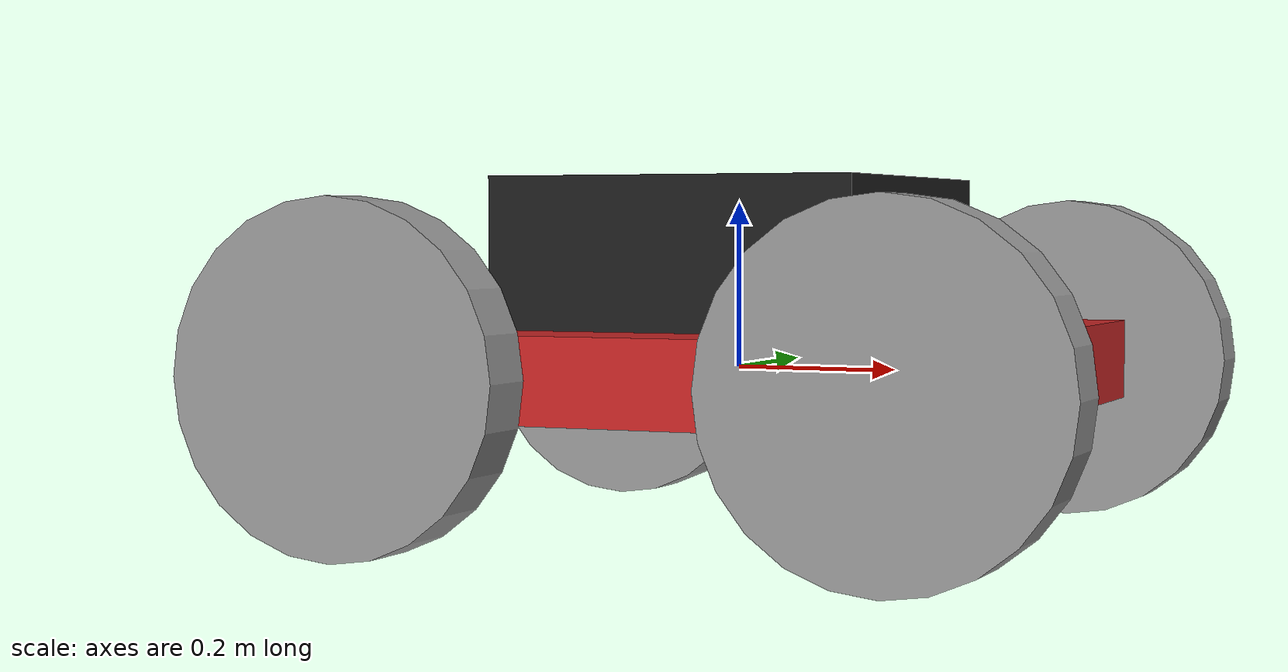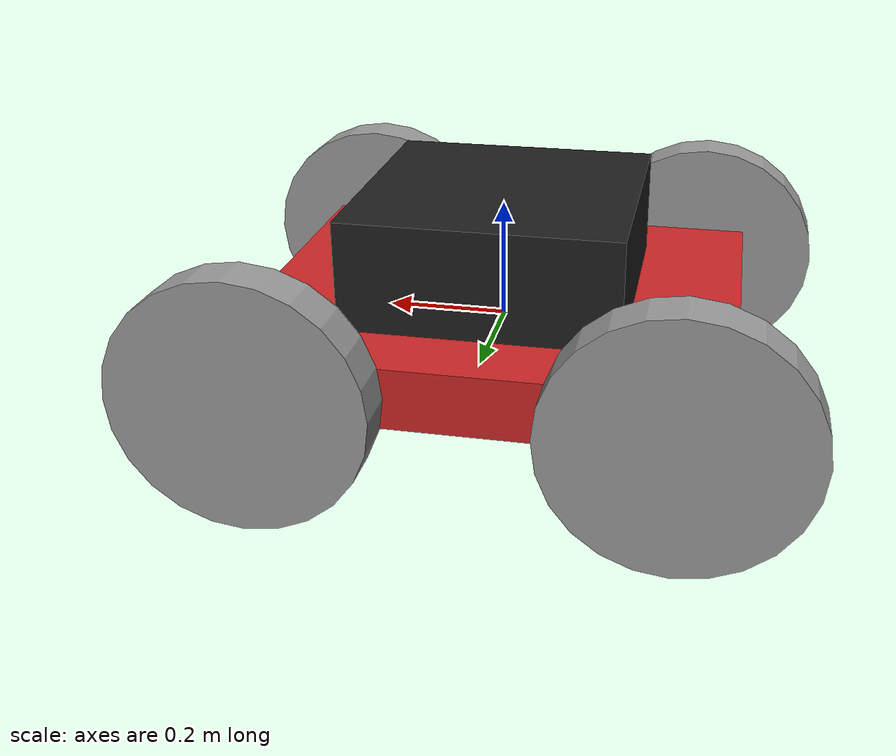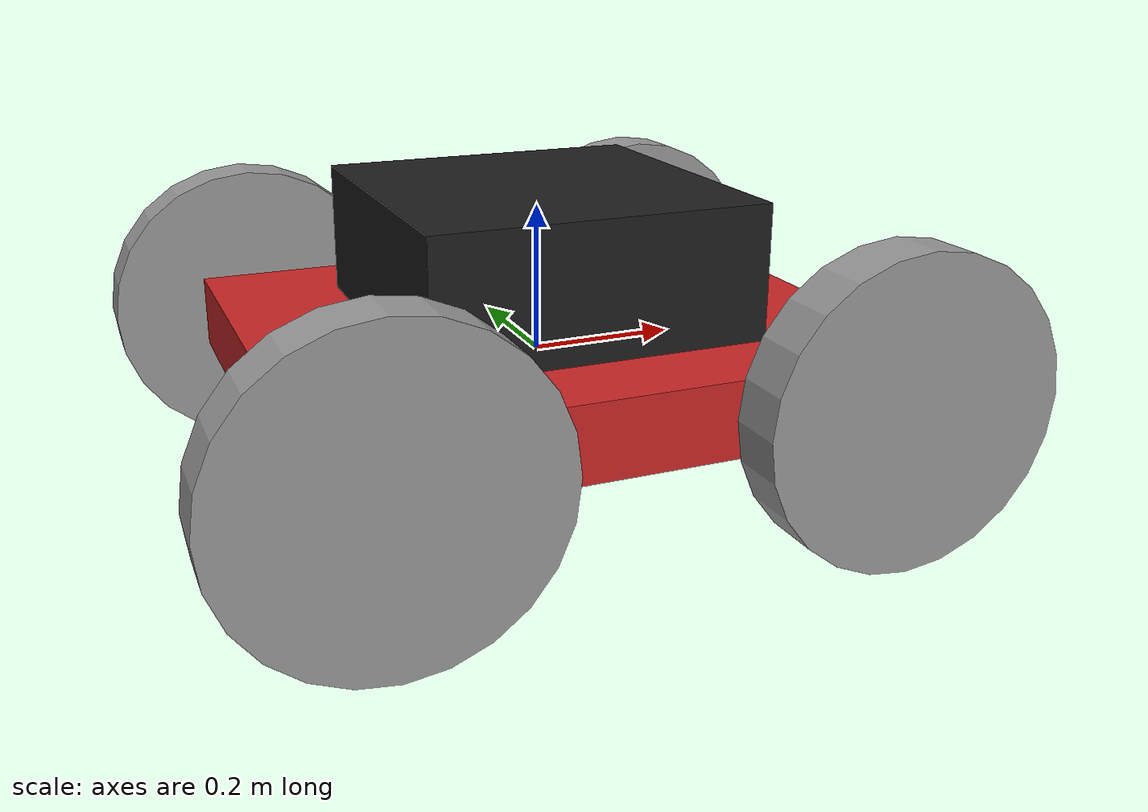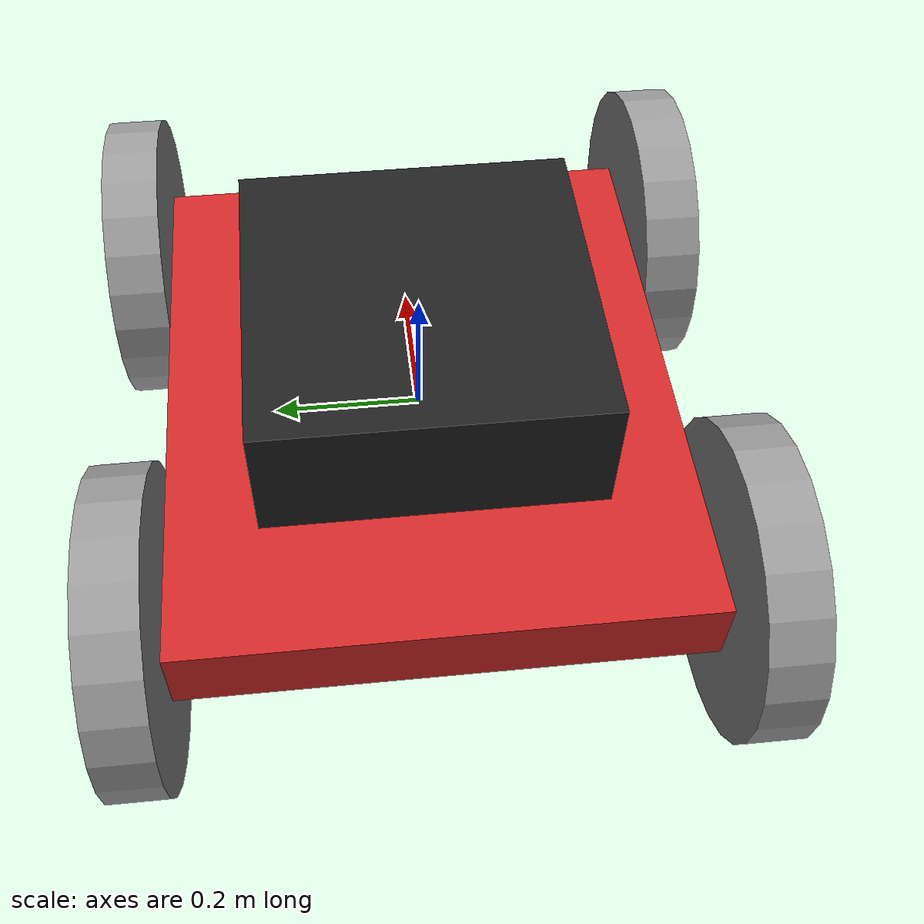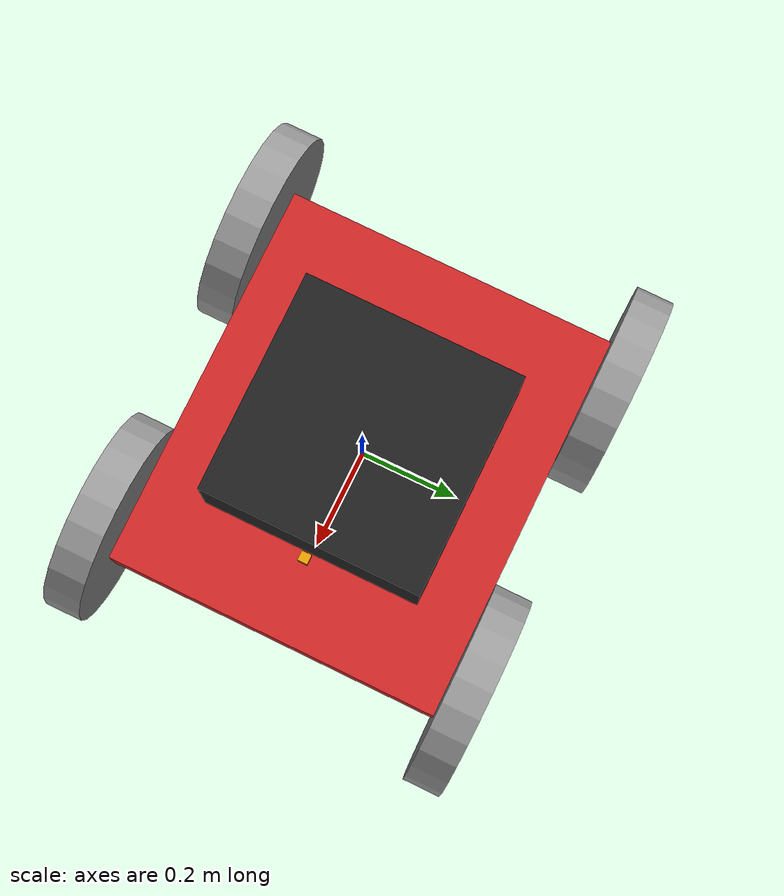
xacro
<?xml version="1.0"?>
<robot name="smile" xmlns:xacro="http//www.ros.org/wiki/xacro">
   <xacro:property name="scale" value="3.0"/>

   <!--chassis Dimension [9" 10.5" 1.32"]-->
   <xacro:property name="chassis_width" value="${scale * 0.2286}"/>
   <xacro:property name="chassis_length" value="${scale * 0.2667}"/>
   <xacro:property name="chassis_height" value="${scale * 0.033528}"/>
   <xacro:property name="chassis_mass" value="${scale * 1.0}"/>

   <xacro:property name="wheel_radius" value="${scale * 0.06858}"/>
   <xacro:property name="wheel_width" value="${scale * 0.0254}"/>
   <xacro:property name="wheel_pos_offset" value="${scale * 0.0254}"/>
   <xacro:property name="wheel_mass" value="${scale * 0.5}"/>

   <xacro:property name="sensor_mount_width" value="${scale * 0.15}"/>
   <xacro:property name="sensor_mount_height" value="${scale * 0.06}"/>

  <xacro:property name="pi_div_2" value="1.57075"/>

  <link name="base_link"/>

  <!-- chassis -->
  <link name="chassis">

    <visual>
      <geometry>
        <box size="${chassis_length} ${chassis_width} ${chassis_height}"/>
      </geometry>
    </visual>

    <collision>
      <geometry>
        <box size="${chassis_length} ${chassis_width} ${chassis_height}"/>
      </geometry>
    </collision>

    <inertial>
      <mass value="${chassis_mass}"/>
      <inertia
        ixx="${chassis_mass / 12.0 * (chassis_length*chassis_length + chassis_height*chassis_height)}" ixy="0.0" ixz="0.0"
        iyy="${chassis_mass / 12.0 * (chassis_width*chassis_width + chassis_height*chassis_height)}" iyz="0.0"
        izz="${chassis_mass / 12.0 * (chassis_width*chassis_width + chassis_length*chassis_length)}"/>
    </inertial>

  </link>
  <joint name="base_link_to_chassis" type="fixed">
    <parent link="base_link"/>
    <child link="chassis"/>
  </joint>

  <!-- Left Front Wheel-->
  <link name="left_front_wheel">

    <visual>
      <geometry>
        <cylinder length="${wheel_width}" radius="${wheel_radius}"/>
      </geometry>
      <origin rpy="0 ${pi_div_2} ${pi_div_2}" xyz="0 ${wheel_width / 2} 0"/>
    </visual>

    <collision>
      <geometry>
        <cylinder length="${wheel_width}" radius="${wheel_radius}"/>
      </geometry>
      <origin rpy="0 ${pi_div_2} ${pi_div_2}" xyz="0 ${wheel_width / 2} 0"/>
    </collision>

    <inertial>
      <mass value="${wheel_mass}"/>
      <inertia
        ixx="0.01" ixy="0.0" ixz="0.0"
        iyy="${wheel_mass / 2.0 * wheel_radius * wheel_radius}" iyz="0.0"
        izz="0.01"/>
      <origin rpy="0 ${pi_div_2} ${pi_div_2}" xyz="0 ${wheel_width / 2} 0"/>
    </inertial>

  </link>

  <joint name="base_to_left_front_wheel" type="continuous">
    <parent link="chassis"/>
    <child link="left_front_wheel"/>
    <origin xyz="${(chassis_length / 2) - wheel_pos_offset} ${chassis_width / 2} 0 "/>
    <axis xyz="0 1 0"/>
    <dynamics damping="1.5"/>
  </joint>

    <!-- Right Front Wheel-->
  <link name="right_front_wheel">

    <visual>
      <geometry>
        <cylinder length="${wheel_width}" radius="${wheel_radius}"/>
      </geometry>
      <origin rpy="0 ${pi_div_2} ${pi_div_2}" xyz="0 ${-1*wheel_width / 2} 0"/>
    </visual>

    <collision>
      <geometry>
        <cylinder length="${wheel_width}" radius="${wheel_radius}"/>
      </geometry>
      <origin rpy="0 ${pi_div_2} ${pi_div_2}" xyz="0 ${-1*wheel_width / 2} 0"/>
    </collision>

    <inertial>
      <mass value="${wheel_mass}"/>
      <inertia
        ixx="0.01" ixy="0.0" ixz="0.0"
        iyy="${wheel_mass / 2.0 * wheel_radius * wheel_radius}" iyz="0.0"
        izz="0.01"/>
      <origin rpy="0 ${pi_div_2} ${pi_div_2}" xyz="0 ${-1*wheel_width / 2} 0"/>
    </inertial>

  </link>

  <joint name="base_to_right_front_wheel" type="continuous">
    <parent link="chassis"/>
    <child link="right_front_wheel"/>
    <origin xyz="${(chassis_length / 2) - wheel_pos_offset} ${-1 * chassis_width / 2} 0 "/>
    <axis xyz="0 1 0"/>
    <dynamics damping="1.5"/>
  </joint>

    <!-- Left Back Wheel-->
  <link name="left_back_wheel">

    <visual>
      <geometry>
        <cylinder length="${wheel_width}" radius="${wheel_radius}"/>
      </geometry>
      <origin rpy="0 ${pi_div_2} ${pi_div_2}" xyz="0 ${wheel_width / 2} 0"/>
    </visual>

    <collision>
      <geometry>
        <cylinder length="${wheel_width}" radius="${wheel_radius}"/>
      </geometry>
      <origin rpy="0 ${pi_div_2} ${pi_div_2}" xyz="0 ${wheel_width / 2} 0"/>
    </collision>

    <inertial>
      <mass value="${wheel_mass}"/>
      <inertia
        ixx="0.01" ixy="0.0" ixz="0.0"
        iyy="${wheel_mass / 2.0 * wheel_radius * wheel_radius}" iyz="0.0"
        izz="0.01"/>
      <origin rpy="0 ${pi_div_2} ${pi_div_2}" xyz="0 ${wheel_width / 2} 0"/>
    </inertial>

  </link>

  <joint name="base_to_left_back_wheel" type="continuous">
    <parent link="chassis"/>
    <child link="left_back_wheel"/>
    <origin xyz="${(-1* chassis_length / 2) + wheel_pos_offset} ${chassis_width / 2} 0 "/>
    <axis xyz="0 1 0"/>
    <dynamics damping="1.5"/>
  </joint>

  <!-- Right Back Wheel -->
  <link name="right_back_wheel">

    <visual>
      <geometry>
        <cylinder length="${wheel_width}" radius="${wheel_radius}"/>
      </geometry>
      <origin rpy="0 ${pi_div_2} ${pi_div_2}" xyz="0 ${-1*wheel_width / 2} 0"/>
    </visual>

    <collision>
      <geometry>
        <cylinder length="${wheel_width}" radius="${wheel_radius}"/>
      </geometry>
      <origin rpy="0 ${pi_div_2} ${pi_div_2}" xyz="0 ${-1*wheel_width / 2} 0"/>
    </collision>

    <inertial>
      <mass value="${wheel_mass}"/>
      <inertia
        ixx="0.01" ixy="0.0" ixz="0.0"
        iyy="${wheel_mass / 2.0 * wheel_radius * wheel_radius}" iyz="0.0"
        izz="0.01"/>
      <origin rpy="0 ${pi_div_2} ${pi_div_2}" xyz="0 ${-1*wheel_width / 2} 0"/>
    </inertial>

  </link>

  <joint name="base_to_right_back_wheel" type="continuous">
    <parent link="chassis"/>
    <child link="right_back_wheel"/>
    <origin xyz="${(-1*chassis_length / 2) + wheel_pos_offset} ${-1 * chassis_width / 2} 0 "/>
    <axis xyz="0 1 0"/>
    <dynamics damping="1.5"/>
  </joint>

<transmission name="left_front_wheel_trans">
  <type>transmission_interface/SimpleTransmission</type>
  <actuator name="left_front_wheel_motor">
    <hardwareInterface>hardware_interface/EffortJointInterface</hardwareInterface>
    <mechanicalReduction>1</mechanicalReduction>
  </actuator>
  <joint name="base_to_left_front_wheel">
    <hardwareInterface>hardware_interface/EffortJointInterface</hardwareInterface>
  </joint>
</transmission>

<transmission name="left_back_wheel_trans">
  <type>transmission_interface/SimpleTransmission</type>
  <actuator name="left_back_wheel_motor">
    <hardwareInterface>hardware_interface/EffortJointInterface</hardwareInterface>
    <mechanicalReduction>1</mechanicalReduction>
  </actuator>
  <joint name="base_to_left_back_wheel">
    <hardwareInterface>hardware_interface/EffortJointInterface</hardwareInterface>
  </joint>
</transmission>

<transmission name="right_front_wheel_trans">
  <type>transmission_interface/SimpleTransmission</type>
  <actuator name="right_front_wheel_motor">
    <hardwareInterface>hardware_interface/EffortJointInterface</hardwareInterface>
    <mechanicalReduction>1</mechanicalReduction>
  </actuator>
  <joint name="base_to_right_front_wheel">
    <hardwareInterface>hardware_interface/EffortJointInterface</hardwareInterface>
  </joint>
</transmission>

<transmission name="right_back_wheel_trans">
  <type>transmission_interface/SimpleTransmission</type>
  <actuator name="right_back_wheel_motor">
  <hardwareInterface>hardware_interface/EffortJointInterface</hardwareInterface>
  <mechanicalReduction>1</mechanicalReduction>
  </actuator>
  <joint name="base_to_right_back_wheel">
    <hardwareInterface>hardware_interface/EffortJointInterface</hardwareInterface>
  </joint>
</transmission>

<gazebo>
  <plugin name="gazebo_ros_control" filename="libgazebo_ros_control.so">
    <robotNamespace>/smile</robotNamespace>
  </plugin>
</gazebo>

<!--Add colors for gazebo to each part of the vehicle-->
<gazebo reference="chassis">
  <material>Gazebo/Red</material>
</gazebo>

<gazebo reference="left_front_wheel">
  <material>Gazebo/Grey</material>
  <mu1>0.5</mu1>
  <mu2>0.5</mu2>
</gazebo>

<gazebo reference="left_back_wheel">
  <material>Gazebo/Grey</material>
  <mu1>0.5</mu1>
  <mu2>0.5</mu2>
</gazebo>

<gazebo reference="right_front_wheel">
  <material>Gazebo/Grey</material>
  <mu1>0.5</mu1>
  <mu2>0.5</mu2>
</gazebo>

<gazebo reference="right_back_wheel">
  <material>Gazebo/Grey</material>
  <mu1>0.5</mu1>
  <mu2>0.5</mu2>
</gazebo>

<!--A small link to connect the IMU to the chassis-->
<link name="imu_link">
</link>

<joint name="chassis_to_imu_link" type="fixed">
  <parent link="chassis"/>
  <child link="imu_link"/>
  <origin xyz="0.0 0.0 0.0"/>
</joint>

<!--IMU Sensor Plugin-->
<gazebo reference="imu_link">
  <gravity>true</gravity>
  <sensor name="imu_sensor" type="imu">
    <always_on>true</always_on>
    <update_rate>100</update_rate>
    <visualize>true</visualize>
    <topic>__default_topic__</topic>
    <plugin filename="libgazebo_ros_imu_sensor.so" name="imu_plugin">
      <topicName>smile/imu</topicName>
      <bodyName>imu_link</bodyName>
      <updateRateHZ>10.0</updateRateHZ>
      <gaussianNoise>0.0</gaussianNoise>
      <xyzOffset>0 0 0</xyzOffset>
      <rpyOffset>0 0 0</rpyOffset>
      <frameName>imu_link</frameName>
      <initialOrientationAsReference>false</initialOrientationAsReference>
    </plugin>
    <pose>0 0 0 0 0 0</pose>
  </sensor>
</gazebo>

<!--Camera sensor-->

<link name="sensor_mount">

   <collision>
    <origin xyz="0 0 0" rpy="0 0 0"/>
    <geometry>
        <box size="${sensor_mount_width} ${sensor_mount_width} ${sensor_mount_height}"/>
    </geometry>
  </collision>

  <visual>
    <origin xyz="0 0 0" rpy="0 0 0"/>
    <geometry>
      <box size="${sensor_mount_width} ${sensor_mount_width} ${sensor_mount_height}"/>
    </geometry>
    <material name="black"/>
  </visual>

</link>

<joint name="chassis_to_sensor_mount" type="fixed">
    <axis xyz="0 0 0"/>
    <origin xyz="0 0 ${(chassis_height / 2.0) + (sensor_mount_height/2.0)}" rpy="0 0 0"/>
    <parent link="chassis"/>
    <child link="sensor_mount"/>
</joint>

<xacro:property name="camera_dim" value="0.02"/>
<link name="camera_link">

  <collision>
    <origin xyz="${camera_dim} 0 0" rpy="0 0 0"/>
    <geometry>
        <box size="${camera_dim} ${camera_dim} ${camera_dim}"/>
    </geometry>
  </collision>

  <visual>
    <origin xyz="${camera_dim} 0 0" rpy="0 0 0"/>
    <geometry>
       <box size="${camera_dim} ${camera_dim} ${camera_dim}"/>
    </geometry>
  </visual>
</link>

<joint name="sensor_mount_to_camera_link" type="fixed">
  <axis xyz="0 0 0"/>
  <origin xyz="${sensor_mount_width/2.0} 0 ${3.0*sensor_mount_height / 4.0}" rpy="0 0 0"/>
  <parent link="chassis"/>
  <child link="camera_link"/>
</joint>

<gazebo reference="camera_link">
   <sensor type="camera" name="camera1">
     <update_rate>30.0</update_rate>
     <camera name="head">
       <horizontal_fov>1.3962634</horizontal_fov>
       <image>
         <width>800</width>
         <height>800</height>
         <format>R8G8B8</format>
       </image>
       <clip>
         <near>0.02</near>
         <far>300</far>
       </clip>
       <noise>
         <type>gaussian</type>
         <!-- Noise is sampled independently per pixel on each frame.
              That pixel's noise value is added to each of its color
              channels, which at that point lie in the range [0,1]. -->
         <mean>0.0</mean>
         <stddev>0.007</stddev>
       </noise>
     </camera>
     <plugin name="camera_controller" filename="libgazebo_ros_camera.so">
       <alwaysOn>true</alwaysOn>
       <updateRate>0.0</updateRate>
       <cameraName>smile/camera1</cameraName>
       <imageTopicName>image_raw</imageTopicName>
       <cameraInfoTopicName>camera_info</cameraInfoTopicName>
       <frameName>camera_link</frameName>
       <hackBaseline>0.07</hackBaseline>
       <distortionK1>0.0</distortionK1>
       <distortionK2>0.0</distortionK2>
       <distortionK3>0.0</distortionK3>
       <distortionT1>0.0</distortionT1>
       <distortionT2>0.0</distortionT2>
     </plugin>
   </sensor>

 </gazebo>
</robot>
